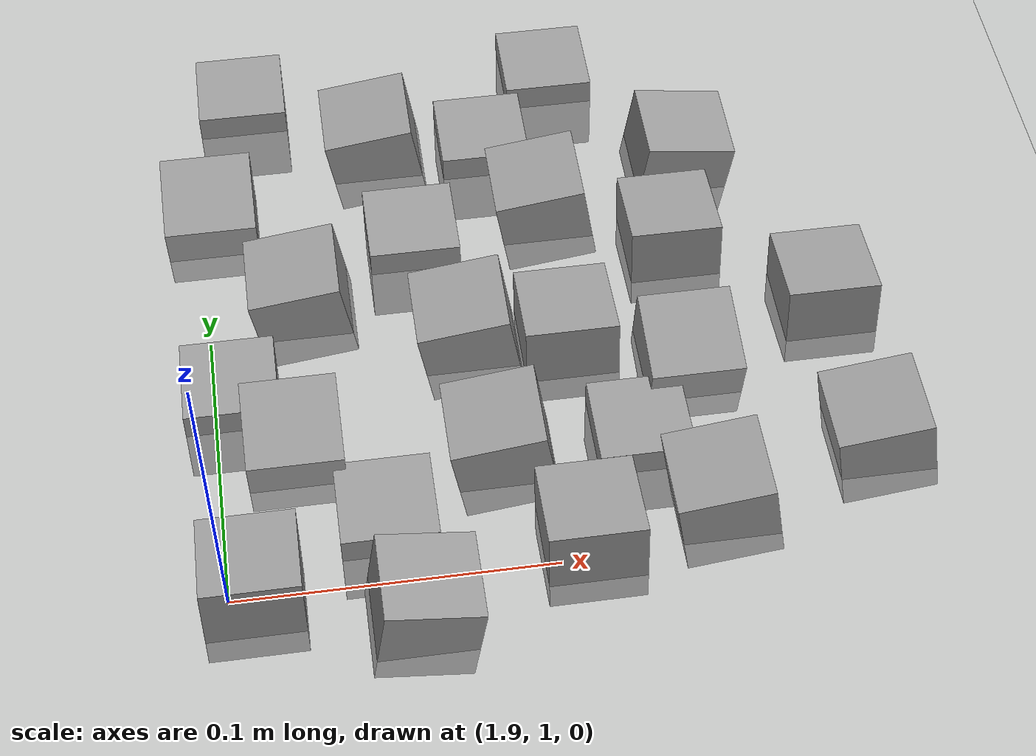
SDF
<sdf version="1.7">
 <world name="default">
  <model name="ground_plane">
   <static>1</static>
   <link name="link">
    <collision name="collision">
     <geometry><plane><normal>0 0 1</normal><size>100 100</size></plane></geometry>
     <surface><friction><ode><mu>100</mu><mu2>50</mu2></ode></friction></surface>
    </collision>
    <visual name="visual">
     <cast_shadows>0</cast_shadows>
     <geometry><plane><normal>0 0 1</normal><size>100 100</size></plane></geometry>
     <material>
      <script><uri>file://media/materials/scripts/gazebo.material</uri><name>Gazebo/Grey</name></script>
     </material>
    </visual>
   </link>
  </model>
  <model name="stone_road_5">
   <link name="link_0_clone_10">
    <inertial>
     <mass>1</mass>
     <inertia>
      <ixx>0.166667</ixx>
      <ixy>0</ixy>
      <ixz>0</ixz>
      <iyy>0.166667</iyy>
      <iyz>0</iyz>
      <izz>0.166667</izz>
     </inertia>
    </inertial>
    <pose>-0.01295 0.17123 0.003778 0.2 -0 0</pose>
    <kinematic>1</kinematic>
    <visual name="visual">
     <geometry><box><size>0.03 0.03 0.03</size></box></geometry>
     <material>
      <lighting>1</lighting>
      <script><uri>file://media/materials/scripts/gazebo.material</uri><name>Gazebo/Grey</name></script>
      <shader type="pixel"><normal_map>__default__</normal_map></shader>
      <ambient>0.3 0.3 0.3 1</ambient>
      <diffuse>0.7 0.7 0.7 1</diffuse>
      <specular>0.01 0.01 0.01 1</specular>
      <emissive>0 0 0 1</emissive>
     </material>
    </visual>
    <collision name="collision">
     <geometry><box><size>0.03 0.03 0.03</size></box></geometry>
     <surface>
      <friction>
       <ode><mu>1</mu><mu2>1</mu2><fdir1>0 0 0</fdir1><slip1>0</slip1><slip2>0</slip2></ode>
       <torsional>
        <coefficient>1</coefficient>
        <patch_radius>0</patch_radius>
        <surface_radius>0</surface_radius>
        <use_patch_radius>1</use_patch_radius>
        <ode><slip>0</slip></ode>
       </torsional>
      </friction>
      <bounce><restitution_coefficient>0</restitution_coefficient><threshold>1e+06</threshold></bounce>
      <contact>
       <collide_without_contact>0</collide_without_contact>
       <collide_without_contact_bitmask>1</collide_without_contact_bitmask>
       <collide_bitmask>1</collide_bitmask>
       <ode>
        <soft_cfm>0</soft_cfm>
        <soft_erp>0.2</soft_erp>
        <kp>1e+13</kp>
        <kd>1</kd>
        <max_vel>0.01</max_vel>
        <min_depth>0</min_depth>
       </ode>
       <bullet>
        <split_impulse>1</split_impulse>
        <split_impulse_penetration_threshold>-0.01</split_impulse_penetration_threshold>
        <soft_cfm>0</soft_cfm>
        <soft_erp>0.2</soft_erp>
        <kp>1e+13</kp>
        <kd>1</kd>
       </bullet>
      </contact>
     </surface>
    </collision>
   </link>
   <link name="link_0_clone_11">
    <inertial>
     <mass>1</mass>
     <inertia>
      <ixx>0.166667</ixx>
      <ixy>0</ixy>
      <ixz>0</ixz>
      <iyy>0.166667</iyy>
      <iyz>0</iyz>
      <izz>0.166667</izz>
     </inertia>
    </inertial>
    <pose>0.007758 0.071496 0.003778 0.2 -0 0</pose>
    <kinematic>1</kinematic>
    <visual name="visual">
     <geometry><box><size>0.03 0.03 0.03</size></box></geometry>
     <material>
      <lighting>1</lighting>
      <script><uri>file://media/materials/scripts/gazebo.material</uri><name>Gazebo/Grey</name></script>
      <shader type="pixel"><normal_map>__default__</normal_map></shader>
      <ambient>0.3 0.3 0.3 1</ambient>
      <diffuse>0.7 0.7 0.7 1</diffuse>
      <specular>0.01 0.01 0.01 1</specular>
      <emissive>0 0 0 1</emissive>
     </material>
    </visual>
    <collision name="collision">
     <geometry><box><size>0.03 0.03 0.03</size></box></geometry>
     <surface>
      <friction>
       <ode><mu>1</mu><mu2>1</mu2><fdir1>0 0 0</fdir1><slip1>0</slip1><slip2>0</slip2></ode>
       <torsional>
        <coefficient>1</coefficient>
        <patch_radius>0</patch_radius>
        <surface_radius>0</surface_radius>
        <use_patch_radius>1</use_patch_radius>
        <ode><slip>0</slip></ode>
       </torsional>
      </friction>
      <bounce><restitution_coefficient>0</restitution_coefficient><threshold>1e+06</threshold></bounce>
      <contact>
       <collide_without_contact>0</collide_without_contact>
       <collide_without_contact_bitmask>1</collide_without_contact_bitmask>
       <collide_bitmask>1</collide_bitmask>
       <ode>
        <soft_cfm>0</soft_cfm>
        <soft_erp>0.2</soft_erp>
        <kp>1e+13</kp>
        <kd>1</kd>
        <max_vel>0.01</max_vel>
        <min_depth>0</min_depth>
       </ode>
       <bullet>
        <split_impulse>1</split_impulse>
        <split_impulse_penetration_threshold>-0.01</split_impulse_penetration_threshold>
        <soft_cfm>0</soft_cfm>
        <soft_erp>0.2</soft_erp>
        <kp>1e+13</kp>
        <kd>1</kd>
       </bullet>
      </contact>
     </surface>
    </collision>
   </link>
   <link name="link_0_clone_2_clone_1">
    <inertial>
     <mass>1</mass>
     <inertia>
      <ixx>0.166667</ixx>
      <ixy>0</ixy>
      <ixz>0</ixz>
      <iyy>0.166667</iyy>
      <iyz>0</iyz>
      <izz>0.166667</izz>
     </inertia>
    </inertial>
    <pose>0.041447 0.006316 0.003778 0 0.15 0</pose>
    <kinematic>1</kinematic>
    <visual name="visual">
     <geometry><box><size>0.03 0.03 0.03</size></box></geometry>
     <material>
      <lighting>1</lighting>
      <script><uri>file://media/materials/scripts/gazebo.material</uri><name>Gazebo/Grey</name></script>
      <shader type="pixel"><normal_map>__default__</normal_map></shader>
      <ambient>0.3 0.3 0.3 1</ambient>
      <diffuse>0.7 0.7 0.7 1</diffuse>
      <specular>0.01 0.01 0.01 1</specular>
      <emissive>0 0 0 1</emissive>
     </material>
    </visual>
    <collision name="collision">
     <geometry><box><size>0.03 0.03 0.03</size></box></geometry>
     <surface>
      <friction>
       <ode><mu>1</mu><mu2>1</mu2><fdir1>0 0 0</fdir1><slip1>0</slip1><slip2>0</slip2></ode>
       <torsional>
        <coefficient>1</coefficient>
        <patch_radius>0</patch_radius>
        <surface_radius>0</surface_radius>
        <use_patch_radius>1</use_patch_radius>
        <ode><slip>0</slip></ode>
       </torsional>
      </friction>
      <bounce><restitution_coefficient>0</restitution_coefficient><threshold>1e+06</threshold></bounce>
      <contact>
       <collide_without_contact>0</collide_without_contact>
       <collide_without_contact_bitmask>1</collide_without_contact_bitmask>
       <collide_bitmask>1</collide_bitmask>
       <ode>
        <soft_cfm>0</soft_cfm>
        <soft_erp>0.2</soft_erp>
        <kp>1e+13</kp>
        <kd>1</kd>
        <max_vel>0.01</max_vel>
        <min_depth>0</min_depth>
       </ode>
       <bullet>
        <split_impulse>1</split_impulse>
        <split_impulse_penetration_threshold>-0.01</split_impulse_penetration_threshold>
        <soft_cfm>0</soft_cfm>
        <soft_erp>0.2</soft_erp>
        <kp>1e+13</kp>
        <kd>1</kd>
       </bullet>
      </contact>
     </surface>
    </collision>
   </link>
   <link name="link_0_clone_2_clone_2">
    <inertial>
     <mass>1</mass>
     <inertia>
      <ixx>0.166667</ixx>
      <ixy>0</ixy>
      <ixz>0</ixz>
      <iyy>0.166667</iyy>
      <iyz>0</iyz>
      <izz>0.166667</izz>
     </inertia>
    </inertial>
    <pose>0.066563 0.110568 0.003778 0 -0.15 0</pose>
    <kinematic>1</kinematic>
    <visual name="visual">
     <geometry><box><size>0.03 0.03 0.03</size></box></geometry>
     <material>
      <lighting>1</lighting>
      <script><uri>file://media/materials/scripts/gazebo.material</uri><name>Gazebo/Grey</name></script>
      <shader type="pixel"><normal_map>__default__</normal_map></shader>
      <ambient>0.3 0.3 0.3 1</ambient>
      <diffuse>0.7 0.7 0.7 1</diffuse>
      <specular>0.01 0.01 0.01 1</specular>
      <emissive>0 0 0 1</emissive>
     </material>
    </visual>
    <collision name="collision">
     <geometry><box><size>0.03 0.03 0.03</size></box></geometry>
     <surface>
      <friction>
       <ode><mu>1</mu><mu2>1</mu2><fdir1>0 0 0</fdir1><slip1>0</slip1><slip2>0</slip2></ode>
       <torsional>
        <coefficient>1</coefficient>
        <patch_radius>0</patch_radius>
        <surface_radius>0</surface_radius>
        <use_patch_radius>1</use_patch_radius>
        <ode><slip>0</slip></ode>
       </torsional>
      </friction>
      <bounce><restitution_coefficient>0</restitution_coefficient><threshold>1e+06</threshold></bounce>
      <contact>
       <collide_without_contact>0</collide_without_contact>
       <collide_without_contact_bitmask>1</collide_without_contact_bitmask>
       <collide_bitmask>1</collide_bitmask>
       <ode>
        <soft_cfm>0</soft_cfm>
        <soft_erp>0.2</soft_erp>
        <kp>1e+13</kp>
        <kd>1</kd>
        <max_vel>0.01</max_vel>
        <min_depth>0</min_depth>
       </ode>
       <bullet>
        <split_impulse>1</split_impulse>
        <split_impulse_penetration_threshold>-0.01</split_impulse_penetration_threshold>
        <soft_cfm>0</soft_cfm>
        <soft_erp>0.2</soft_erp>
        <kp>1e+13</kp>
        <kd>1</kd>
       </bullet>
      </contact>
     </surface>
    </collision>
   </link>
   <link name="link_0_clone_2_clone_2_clone">
    <inertial>
     <mass>1</mass>
     <inertia>
      <ixx>0.166667</ixx>
      <ixy>0</ixy>
      <ixz>0</ixz>
      <iyy>0.166667</iyy>
      <iyz>0</iyz>
      <izz>0.166667</izz>
     </inertia>
    </inertial>
    <pose>0.189059 0.051135 0.003778 0 -0.15 0</pose>
    <kinematic>1</kinematic>
    <visual name="visual">
     <geometry><box><size>0.03 0.03 0.03</size></box></geometry>
     <material>
      <lighting>1</lighting>
      <script><uri>file://media/materials/scripts/gazebo.material</uri><name>Gazebo/Grey</name></script>
      <shader type="pixel"><normal_map>__default__</normal_map></shader>
      <ambient>0.3 0.3 0.3 1</ambient>
      <diffuse>0.7 0.7 0.7 1</diffuse>
      <specular>0.01 0.01 0.01 1</specular>
      <emissive>0 0 0 1</emissive>
     </material>
    </visual>
    <collision name="collision">
     <geometry><box><size>0.03 0.03 0.03</size></box></geometry>
     <surface>
      <friction>
       <ode><mu>1</mu><mu2>1</mu2><fdir1>0 0 0</fdir1><slip1>0</slip1><slip2>0</slip2></ode>
       <torsional>
        <coefficient>1</coefficient>
        <patch_radius>0</patch_radius>
        <surface_radius>0</surface_radius>
        <use_patch_radius>1</use_patch_radius>
        <ode><slip>0</slip></ode>
       </torsional>
      </friction>
      <bounce><restitution_coefficient>0</restitution_coefficient><threshold>1e+06</threshold></bounce>
      <contact>
       <collide_without_contact>0</collide_without_contact>
       <collide_without_contact_bitmask>1</collide_without_contact_bitmask>
       <collide_bitmask>1</collide_bitmask>
       <ode>
        <soft_cfm>0</soft_cfm>
        <soft_erp>0.2</soft_erp>
        <kp>1e+13</kp>
        <kd>1</kd>
        <max_vel>0.01</max_vel>
        <min_depth>0</min_depth>
       </ode>
       <bullet>
        <split_impulse>1</split_impulse>
        <split_impulse_penetration_threshold>-0.01</split_impulse_penetration_threshold>
        <soft_cfm>0</soft_cfm>
        <soft_erp>0.2</soft_erp>
        <kp>1e+13</kp>
        <kd>1</kd>
       </bullet>
      </contact>
     </surface>
    </collision>
   </link>
   <link name="link_0_clone_2_clone_2_clone_10">
    <inertial>
     <mass>1</mass>
     <inertia>
      <ixx>0.166667</ixx>
      <ixy>0</ixy>
      <ixz>0</ixz>
      <iyy>0.166667</iyy>
      <iyz>0</iyz>
      <izz>0.166667</izz>
     </inertia>
    </inertial>
    <pose>0.09869 0.163436 0.003778 0 -0.15 0</pose>
    <kinematic>1</kinematic>
    <visual name="visual">
     <geometry><box><size>0.03 0.03 0.03</size></box></geometry>
     <material>
      <lighting>1</lighting>
      <script><uri>file://media/materials/scripts/gazebo.material</uri><name>Gazebo/Grey</name></script>
      <shader type="pixel"><normal_map>__default__</normal_map></shader>
      <ambient>0.3 0.3 0.3 1</ambient>
      <diffuse>0.7 0.7 0.7 1</diffuse>
      <specular>0.01 0.01 0.01 1</specular>
      <emissive>0 0 0 1</emissive>
     </material>
    </visual>
    <collision name="collision">
     <geometry><box><size>0.03 0.03 0.03</size></box></geometry>
     <surface>
      <friction>
       <ode><mu>1</mu><mu2>1</mu2><fdir1>0 0 0</fdir1><slip1>0</slip1><slip2>0</slip2></ode>
       <torsional>
        <coefficient>1</coefficient>
        <patch_radius>0</patch_radius>
        <surface_radius>0</surface_radius>
        <use_patch_radius>1</use_patch_radius>
        <ode><slip>0</slip></ode>
       </torsional>
      </friction>
      <bounce><restitution_coefficient>0</restitution_coefficient><threshold>1e+06</threshold></bounce>
      <contact>
       <collide_without_contact>0</collide_without_contact>
       <collide_without_contact_bitmask>1</collide_without_contact_bitmask>
       <collide_bitmask>1</collide_bitmask>
       <ode>
        <soft_cfm>0</soft_cfm>
        <soft_erp>0.2</soft_erp>
        <kp>1e+13</kp>
        <kd>1</kd>
        <max_vel>0.01</max_vel>
        <min_depth>0</min_depth>
       </ode>
       <bullet>
        <split_impulse>1</split_impulse>
        <split_impulse_penetration_threshold>-0.01</split_impulse_penetration_threshold>
        <soft_cfm>0</soft_cfm>
        <soft_erp>0.2</soft_erp>
        <kp>1e+13</kp>
        <kd>1</kd>
       </bullet>
      </contact>
     </surface>
    </collision>
   </link>
   <link name="link_0_clone_2_clone_2_clone_12">
    <inertial>
     <mass>1</mass>
     <inertia>
      <ixx>0.166667</ixx>
      <ixy>0</ixy>
      <ixz>0</ixz>
      <iyy>0.166667</iyy>
      <iyz>0</iyz>
      <izz>0.166667</izz>
     </inertia>
    </inertial>
    <pose>0.044693 0.200081 0.003778 0 -0.15 0</pose>
    <kinematic>1</kinematic>
    <visual name="visual">
     <geometry><box><size>0.03 0.03 0.03</size></box></geometry>
     <material>
      <lighting>1</lighting>
      <script><uri>file://media/materials/scripts/gazebo.material</uri><name>Gazebo/Grey</name></script>
      <shader type="pixel"><normal_map>__default__</normal_map></shader>
      <ambient>0.3 0.3 0.3 1</ambient>
      <diffuse>0.7 0.7 0.7 1</diffuse>
      <specular>0.01 0.01 0.01 1</specular>
      <emissive>0 0 0 1</emissive>
     </material>
    </visual>
    <collision name="collision">
     <geometry><box><size>0.03 0.03 0.03</size></box></geometry>
     <surface>
      <friction>
       <ode><mu>1</mu><mu2>1</mu2><fdir1>0 0 0</fdir1><slip1>0</slip1><slip2>0</slip2></ode>
       <torsional>
        <coefficient>1</coefficient>
        <patch_radius>0</patch_radius>
        <surface_radius>0</surface_radius>
        <use_patch_radius>1</use_patch_radius>
        <ode><slip>0</slip></ode>
       </torsional>
      </friction>
      <bounce><restitution_coefficient>0</restitution_coefficient><threshold>1e+06</threshold></bounce>
      <contact>
       <collide_without_contact>0</collide_without_contact>
       <collide_without_contact_bitmask>1</collide_without_contact_bitmask>
       <collide_bitmask>1</collide_bitmask>
       <ode>
        <soft_cfm>0</soft_cfm>
        <soft_erp>0.2</soft_erp>
        <kp>1e+13</kp>
        <kd>1</kd>
        <max_vel>0.01</max_vel>
        <min_depth>0</min_depth>
       </ode>
       <bullet>
        <split_impulse>1</split_impulse>
        <split_impulse_penetration_threshold>-0.01</split_impulse_penetration_threshold>
        <soft_cfm>0</soft_cfm>
        <soft_erp>0.2</soft_erp>
        <kp>1e+13</kp>
        <kd>1</kd>
       </bullet>
      </contact>
     </surface>
    </collision>
   </link>
   <link name="link_0_clone_2_clone_2_clone_13">
    <inertial>
     <mass>1</mass>
     <inertia>
      <ixx>0.166667</ixx>
      <ixy>0</ixy>
      <ixz>0</ixz>
      <iyy>0.166667</iyy>
      <iyz>0</iyz>
      <izz>0.166667</izz>
     </inertia>
    </inertial>
    <pose>0.014407 0.13189 0.003778 0 -0.15 0</pose>
    <kinematic>1</kinematic>
    <visual name="visual">
     <geometry><box><size>0.03 0.03 0.03</size></box></geometry>
     <material>
      <lighting>1</lighting>
      <script><uri>file://media/materials/scripts/gazebo.material</uri><name>Gazebo/Grey</name></script>
      <shader type="pixel"><normal_map>__default__</normal_map></shader>
      <ambient>0.3 0.3 0.3 1</ambient>
      <diffuse>0.7 0.7 0.7 1</diffuse>
      <specular>0.01 0.01 0.01 1</specular>
      <emissive>0 0 0 1</emissive>
     </material>
    </visual>
    <collision name="collision">
     <geometry><box><size>0.03 0.03 0.03</size></box></geometry>
     <surface>
      <friction>
       <ode><mu>1</mu><mu2>1</mu2><fdir1>0 0 0</fdir1><slip1>0</slip1><slip2>0</slip2></ode>
       <torsional>
        <coefficient>1</coefficient>
        <patch_radius>0</patch_radius>
        <surface_radius>0</surface_radius>
        <use_patch_radius>1</use_patch_radius>
        <ode><slip>0</slip></ode>
       </torsional>
      </friction>
      <bounce><restitution_coefficient>0</restitution_coefficient><threshold>1e+06</threshold></bounce>
      <contact>
       <collide_without_contact>0</collide_without_contact>
       <collide_without_contact_bitmask>1</collide_without_contact_bitmask>
       <collide_bitmask>1</collide_bitmask>
       <ode>
        <soft_cfm>0</soft_cfm>
        <soft_erp>0.2</soft_erp>
        <kp>1e+13</kp>
        <kd>1</kd>
        <max_vel>0.01</max_vel>
        <min_depth>0</min_depth>
       </ode>
       <bullet>
        <split_impulse>1</split_impulse>
        <split_impulse_penetration_threshold>-0.01</split_impulse_penetration_threshold>
        <soft_cfm>0</soft_cfm>
        <soft_erp>0.2</soft_erp>
        <kp>1e+13</kp>
        <kd>1</kd>
       </bullet>
      </contact>
     </surface>
    </collision>
   </link>
   <link name="link_0_clone_2_clone_2_clone_13_clone">
    <inertial>
     <mass>1</mass>
     <inertia>
      <ixx>0.166667</ixx>
      <ixy>0</ixy>
      <ixz>0</ixz>
      <iyy>0.166667</iyy>
      <iyz>0</iyz>
      <izz>0.166667</izz>
     </inertia>
    </inertial>
    <pose>0.138846 0.140956 0.003778 -0.1 0 0</pose>
    <kinematic>1</kinematic>
    <visual name="visual">
     <geometry><box><size>0.03 0.03 0.03</size></box></geometry>
     <material>
      <lighting>1</lighting>
      <script><uri>file://media/materials/scripts/gazebo.material</uri><name>Gazebo/Grey</name></script>
      <shader type="pixel"><normal_map>__default__</normal_map></shader>
      <ambient>0.3 0.3 0.3 1</ambient>
      <diffuse>0.7 0.7 0.7 1</diffuse>
      <specular>0.01 0.01 0.01 1</specular>
      <emissive>0 0 0 1</emissive>
     </material>
    </visual>
    <collision name="collision">
     <geometry><box><size>0.03 0.03 0.03</size></box></geometry>
     <surface>
      <friction>
       <ode><mu>1</mu><mu2>1</mu2><fdir1>0 0 0</fdir1><slip1>0</slip1><slip2>0</slip2></ode>
       <torsional>
        <coefficient>1</coefficient>
        <patch_radius>0</patch_radius>
        <surface_radius>0</surface_radius>
        <use_patch_radius>1</use_patch_radius>
        <ode><slip>0</slip></ode>
       </torsional>
      </friction>
      <bounce><restitution_coefficient>0</restitution_coefficient><threshold>1e+06</threshold></bounce>
      <contact>
       <collide_without_contact>0</collide_without_contact>
       <collide_without_contact_bitmask>1</collide_without_contact_bitmask>
       <collide_bitmask>1</collide_bitmask>
       <ode>
        <soft_cfm>0</soft_cfm>
        <soft_erp>0.2</soft_erp>
        <kp>1e+13</kp>
        <kd>1</kd>
        <max_vel>0.01</max_vel>
        <min_depth>0</min_depth>
       </ode>
       <bullet>
        <split_impulse>1</split_impulse>
        <split_impulse_penetration_threshold>-0.01</split_impulse_penetration_threshold>
        <soft_cfm>0</soft_cfm>
        <soft_erp>0.2</soft_erp>
        <kp>1e+13</kp>
        <kd>1</kd>
       </bullet>
      </contact>
     </surface>
    </collision>
   </link>
   <link name="link_0_clone_2_clone_2_clone_13_clone_clone">
    <inertial>
     <mass>1</mass>
     <inertia>
      <ixx>0.166667</ixx>
      <ixy>0</ixy>
      <ixz>0</ixz>
      <iyy>0.166667</iyy>
      <iyz>0</iyz>
      <izz>0.166667</izz>
     </inertia>
    </inertial>
    <pose>0.184456 0.108712 0.003778 -0.1 0 0</pose>
    <kinematic>1</kinematic>
    <visual name="visual">
     <geometry><box><size>0.03 0.03 0.03</size></box></geometry>
     <material>
      <lighting>1</lighting>
      <script><uri>file://media/materials/scripts/gazebo.material</uri><name>Gazebo/Grey</name></script>
      <shader type="pixel"><normal_map>__default__</normal_map></shader>
      <ambient>0.3 0.3 0.3 1</ambient>
      <diffuse>0.7 0.7 0.7 1</diffuse>
      <specular>0.01 0.01 0.01 1</specular>
      <emissive>0 0 0 1</emissive>
     </material>
    </visual>
    <collision name="collision">
     <geometry><box><size>0.03 0.03 0.03</size></box></geometry>
     <surface>
      <friction>
       <ode><mu>1</mu><mu2>1</mu2><fdir1>0 0 0</fdir1><slip1>0</slip1><slip2>0</slip2></ode>
       <torsional>
        <coefficient>1</coefficient>
        <patch_radius>0</patch_radius>
        <surface_radius>0</surface_radius>
        <use_patch_radius>1</use_patch_radius>
        <ode><slip>0</slip></ode>
       </torsional>
      </friction>
      <bounce><restitution_coefficient>0</restitution_coefficient><threshold>1e+06</threshold></bounce>
      <contact>
       <collide_without_contact>0</collide_without_contact>
       <collide_without_contact_bitmask>1</collide_without_contact_bitmask>
       <collide_bitmask>1</collide_bitmask>
       <ode>
        <soft_cfm>0</soft_cfm>
        <soft_erp>0.2</soft_erp>
        <kp>1e+13</kp>
        <kd>1</kd>
        <max_vel>0.01</max_vel>
        <min_depth>0</min_depth>
       </ode>
       <bullet>
        <split_impulse>1</split_impulse>
        <split_impulse_penetration_threshold>-0.01</split_impulse_penetration_threshold>
        <soft_cfm>0</soft_cfm>
        <soft_erp>0.2</soft_erp>
        <kp>1e+13</kp>
        <kd>1</kd>
       </bullet>
      </contact>
     </surface>
    </collision>
   </link>
   <link name="link_0_clone_2_clone_2_clone_13_clone_clone_0">
    <inertial>
     <mass>1</mass>
     <inertia>
      <ixx>0.166667</ixx>
      <ixy>0</ixy>
      <ixz>0</ixz>
      <iyy>0.166667</iyy>
      <iyz>0</iyz>
      <izz>0.166667</izz>
     </inertia>
    </inertial>
    <pose>0.094072 0.02539 0.003778 -0.1 0 0</pose>
    <kinematic>1</kinematic>
    <visual name="visual">
     <geometry><box><size>0.03 0.03 0.03</size></box></geometry>
     <material>
      <lighting>1</lighting>
      <script><uri>file://media/materials/scripts/gazebo.material</uri><name>Gazebo/Grey</name></script>
      <shader type="pixel"><normal_map>__default__</normal_map></shader>
      <ambient>0.3 0.3 0.3 1</ambient>
      <diffuse>0.7 0.7 0.7 1</diffuse>
      <specular>0.01 0.01 0.01 1</specular>
      <emissive>0 0 0 1</emissive>
     </material>
    </visual>
    <collision name="collision">
     <geometry><box><size>0.03 0.03 0.03</size></box></geometry>
     <surface>
      <friction>
       <ode><mu>1</mu><mu2>1</mu2><fdir1>0 0 0</fdir1><slip1>0</slip1><slip2>0</slip2></ode>
       <torsional>
        <coefficient>1</coefficient>
        <patch_radius>0</patch_radius>
        <surface_radius>0</surface_radius>
        <use_patch_radius>1</use_patch_radius>
        <ode><slip>0</slip></ode>
       </torsional>
      </friction>
      <bounce><restitution_coefficient>0</restitution_coefficient><threshold>1e+06</threshold></bounce>
      <contact>
       <collide_without_contact>0</collide_without_contact>
       <collide_without_contact_bitmask>1</collide_without_contact_bitmask>
       <collide_bitmask>1</collide_bitmask>
       <ode>
        <soft_cfm>0</soft_cfm>
        <soft_erp>0.2</soft_erp>
        <kp>1e+13</kp>
        <kd>1</kd>
        <max_vel>0.01</max_vel>
        <min_depth>0</min_depth>
       </ode>
       <bullet>
        <split_impulse>1</split_impulse>
        <split_impulse_penetration_threshold>-0.01</split_impulse_penetration_threshold>
        <soft_cfm>0</soft_cfm>
        <soft_erp>0.2</soft_erp>
        <kp>1e+13</kp>
        <kd>1</kd>
       </bullet>
      </contact>
     </surface>
    </collision>
   </link>
   <link name="link_0_clone_2_clone_2_clone_13_clone_clone_1">
    <inertial>
     <mass>1</mass>
     <inertia>
      <ixx>0.166667</ixx>
      <ixy>0</ixy>
      <ixz>0</ixz>
      <iyy>0.166667</iyy>
      <iyz>0</iyz>
      <izz>0.166667</izz>
     </inertia>
    </inertial>
    <pose>0.098415 0.103772 0.003778 -0.1 0 0</pose>
    <kinematic>1</kinematic>
    <visual name="visual">
     <geometry><box><size>0.03 0.03 0.03</size></box></geometry>
     <material>
      <lighting>1</lighting>
      <script><uri>file://media/materials/scripts/gazebo.material</uri><name>Gazebo/Grey</name></script>
      <shader type="pixel"><normal_map>__default__</normal_map></shader>
      <ambient>0.3 0.3 0.3 1</ambient>
      <diffuse>0.7 0.7 0.7 1</diffuse>
      <specular>0.01 0.01 0.01 1</specular>
      <emissive>0 0 0 1</emissive>
     </material>
    </visual>
    <collision name="collision">
     <geometry><box><size>0.03 0.03 0.03</size></box></geometry>
     <surface>
      <friction>
       <ode><mu>1</mu><mu2>1</mu2><fdir1>0 0 0</fdir1><slip1>0</slip1><slip2>0</slip2></ode>
       <torsional>
        <coefficient>1</coefficient>
        <patch_radius>0</patch_radius>
        <surface_radius>0</surface_radius>
        <use_patch_radius>1</use_patch_radius>
        <ode><slip>0</slip></ode>
       </torsional>
      </friction>
      <bounce><restitution_coefficient>0</restitution_coefficient><threshold>1e+06</threshold></bounce>
      <contact>
       <collide_without_contact>0</collide_without_contact>
       <collide_without_contact_bitmask>1</collide_without_contact_bitmask>
       <collide_bitmask>1</collide_bitmask>
       <ode>
        <soft_cfm>0</soft_cfm>
        <soft_erp>0.2</soft_erp>
        <kp>1e+13</kp>
        <kd>1</kd>
        <max_vel>0.01</max_vel>
        <min_depth>0</min_depth>
       </ode>
       <bullet>
        <split_impulse>1</split_impulse>
        <split_impulse_penetration_threshold>-0.01</split_impulse_penetration_threshold>
        <soft_cfm>0</soft_cfm>
        <soft_erp>0.2</soft_erp>
        <kp>1e+13</kp>
        <kd>1</kd>
       </bullet>
      </contact>
     </surface>
    </collision>
   </link>
   <link name="link_0_clone_2_clone_2_clone_13_clone_clone_16">
    <inertial>
     <mass>1</mass>
     <inertia>
      <ixx>0.166667</ixx>
      <ixy>0</ixy>
      <ixz>0</ixz>
      <iyy>0.166667</iyy>
      <iyz>0</iyz>
      <izz>0.166667</izz>
     </inertia>
    </inertial>
    <pose>0.108948 0.22849 -0.006222 0 -0 0</pose>
    <kinematic>1</kinematic>
    <visual name="visual">
     <geometry><box><size>0.03 0.03 0.03</size></box></geometry>
     <material>
      <lighting>1</lighting>
      <script><uri>file://media/materials/scripts/gazebo.material</uri><name>Gazebo/Grey</name></script>
      <shader type="pixel"><normal_map>__default__</normal_map></shader>
      <ambient>0.3 0.3 0.3 1</ambient>
      <diffuse>0.7 0.7 0.7 1</diffuse>
      <specular>0.01 0.01 0.01 1</specular>
      <emissive>0 0 0 1</emissive>
     </material>
    </visual>
    <collision name="collision">
     <geometry><box><size>0.03 0.03 0.03</size></box></geometry>
     <surface>
      <friction>
       <ode><mu>1</mu><mu2>1</mu2><fdir1>0 0 0</fdir1><slip1>0</slip1><slip2>0</slip2></ode>
       <torsional>
        <coefficient>1</coefficient>
        <patch_radius>0</patch_radius>
        <surface_radius>0</surface_radius>
        <use_patch_radius>1</use_patch_radius>
        <ode><slip>0</slip></ode>
       </torsional>
      </friction>
      <bounce><restitution_coefficient>0</restitution_coefficient><threshold>1e+06</threshold></bounce>
      <contact>
       <collide_without_contact>0</collide_without_contact>
       <collide_without_contact_bitmask>1</collide_without_contact_bitmask>
       <collide_bitmask>1</collide_bitmask>
       <ode>
        <soft_cfm>0</soft_cfm>
        <soft_erp>0.2</soft_erp>
        <kp>1e+13</kp>
        <kd>1</kd>
        <max_vel>0.01</max_vel>
        <min_depth>0</min_depth>
       </ode>
       <bullet>
        <split_impulse>1</split_impulse>
        <split_impulse_penetration_threshold>-0.01</split_impulse_penetration_threshold>
        <soft_cfm>0</soft_cfm>
        <soft_erp>0.2</soft_erp>
        <kp>1e+13</kp>
        <kd>1</kd>
       </bullet>
      </contact>
     </surface>
    </collision>
   </link>
   <link name="link_0_clone_2_clone_2_clone_13_clone_clone_16_clone">
    <inertial>
     <mass>1</mass>
     <inertia>
      <ixx>0.166667</ixx>
      <ixy>0</ixy>
      <ixz>0</ixz>
      <iyy>0.166667</iyy>
      <iyz>0</iyz>
      <izz>0.166667</izz>
     </inertia>
    </inertial>
    <pose>0.0535 0.156403 -0.006222 0 -0 0</pose>
    <kinematic>1</kinematic>
    <visual name="visual">
     <geometry><box><size>0.03 0.03 0.03</size></box></geometry>
     <material>
      <lighting>1</lighting>
      <script><uri>file://media/materials/scripts/gazebo.material</uri><name>Gazebo/Grey</name></script>
      <shader type="pixel"><normal_map>__default__</normal_map></shader>
      <ambient>0.3 0.3 0.3 1</ambient>
      <diffuse>0.7 0.7 0.7 1</diffuse>
      <specular>0.01 0.01 0.01 1</specular>
      <emissive>0 0 0 1</emissive>
     </material>
    </visual>
    <collision name="collision">
     <geometry><box><size>0.03 0.03 0.03</size></box></geometry>
     <surface>
      <friction>
       <ode><mu>1</mu><mu2>1</mu2><fdir1>0 0 0</fdir1><slip1>0</slip1><slip2>0</slip2></ode>
       <torsional>
        <coefficient>1</coefficient>
        <patch_radius>0</patch_radius>
        <surface_radius>0</surface_radius>
        <use_patch_radius>1</use_patch_radius>
        <ode><slip>0</slip></ode>
       </torsional>
      </friction>
      <bounce><restitution_coefficient>0</restitution_coefficient><threshold>1e+06</threshold></bounce>
      <contact>
       <collide_without_contact>0</collide_without_contact>
       <collide_without_contact_bitmask>1</collide_without_contact_bitmask>
       <collide_bitmask>1</collide_bitmask>
       <ode>
        <soft_cfm>0</soft_cfm>
        <soft_erp>0.2</soft_erp>
        <kp>1e+13</kp>
        <kd>1</kd>
        <max_vel>0.01</max_vel>
        <min_depth>0</min_depth>
       </ode>
       <bullet>
        <split_impulse>1</split_impulse>
        <split_impulse_penetration_threshold>-0.01</split_impulse_penetration_threshold>
        <soft_cfm>0</soft_cfm>
        <soft_erp>0.2</soft_erp>
        <kp>1e+13</kp>
        <kd>1</kd>
       </bullet>
      </contact>
     </surface>
    </collision>
   </link>
   <link name="link_0_clone_2_clone_2_clone_13_clone_clone_16_clone_0">
    <inertial>
     <mass>1</mass>
     <inertia>
      <ixx>0.166667</ixx>
      <ixy>0</ixy>
      <ixz>0</ixz>
      <iyy>0.166667</iyy>
      <iyz>0</iyz>
      <izz>0.166667</izz>
     </inertia>
    </inertial>
    <pose>-0.010782 0.09679 -0.006222 0 -0 0</pose>
    <kinematic>1</kinematic>
    <visual name="visual">
     <geometry><box><size>0.03 0.03 0.03</size></box></geometry>
     <material>
      <lighting>1</lighting>
      <script><uri>file://media/materials/scripts/gazebo.material</uri><name>Gazebo/Grey</name></script>
      <shader type="pixel"><normal_map>__default__</normal_map></shader>
      <ambient>0.3 0.3 0.3 1</ambient>
      <diffuse>0.7 0.7 0.7 1</diffuse>
      <specular>0.01 0.01 0.01 1</specular>
      <emissive>0 0 0 1</emissive>
     </material>
    </visual>
    <collision name="collision">
     <geometry><box><size>0.03 0.03 0.03</size></box></geometry>
     <surface>
      <friction>
       <ode><mu>1</mu><mu2>1</mu2><fdir1>0 0 0</fdir1><slip1>0</slip1><slip2>0</slip2></ode>
       <torsional>
        <coefficient>1</coefficient>
        <patch_radius>0</patch_radius>
        <surface_radius>0</surface_radius>
        <use_patch_radius>1</use_patch_radius>
        <ode><slip>0</slip></ode>
       </torsional>
      </friction>
      <bounce><restitution_coefficient>0</restitution_coefficient><threshold>1e+06</threshold></bounce>
      <contact>
       <collide_without_contact>0</collide_without_contact>
       <collide_without_contact_bitmask>1</collide_without_contact_bitmask>
       <collide_bitmask>1</collide_bitmask>
       <ode>
        <soft_cfm>0</soft_cfm>
        <soft_erp>0.2</soft_erp>
        <kp>1e+13</kp>
        <kd>1</kd>
        <max_vel>0.01</max_vel>
        <min_depth>0</min_depth>
       </ode>
       <bullet>
        <split_impulse>1</split_impulse>
        <split_impulse_penetration_threshold>-0.01</split_impulse_penetration_threshold>
        <soft_cfm>0</soft_cfm>
        <soft_erp>0.2</soft_erp>
        <kp>1e+13</kp>
        <kd>1</kd>
       </bullet>
      </contact>
     </surface>
    </collision>
   </link>
   <link name="link_0_clone_2_clone_2_clone_13_clone_clone_16_clone_1">
    <inertial>
     <mass>1</mass>
     <inertia>
      <ixx>0.166667</ixx>
      <ixy>0</ixy>
      <ixz>0</ixz>
      <iyy>0.166667</iyy>
      <iyz>0</iyz>
      <izz>0.166667</izz>
     </inertia>
    </inertial>
    <pose>0.033787 0.042837 -0.006222 0 -0 0</pose>
    <kinematic>1</kinematic>
    <visual name="visual">
     <geometry><box><size>0.03 0.03 0.03</size></box></geometry>
     <material>
      <lighting>1</lighting>
      <script><uri>file://media/materials/scripts/gazebo.material</uri><name>Gazebo/Grey</name></script>
      <shader type="pixel"><normal_map>__default__</normal_map></shader>
      <ambient>0.3 0.3 0.3 1</ambient>
      <diffuse>0.7 0.7 0.7 1</diffuse>
      <specular>0.01 0.01 0.01 1</specular>
      <emissive>0 0 0 1</emissive>
     </material>
    </visual>
    <collision name="collision">
     <geometry><box><size>0.03 0.03 0.03</size></box></geometry>
     <surface>
      <friction>
       <ode><mu>1</mu><mu2>1</mu2><fdir1>0 0 0</fdir1><slip1>0</slip1><slip2>0</slip2></ode>
       <torsional>
        <coefficient>1</coefficient>
        <patch_radius>0</patch_radius>
        <surface_radius>0</surface_radius>
        <use_patch_radius>1</use_patch_radius>
        <ode><slip>0</slip></ode>
       </torsional>
      </friction>
      <bounce><restitution_coefficient>0</restitution_coefficient><threshold>1e+06</threshold></bounce>
      <contact>
       <collide_without_contact>0</collide_without_contact>
       <collide_without_contact_bitmask>1</collide_without_contact_bitmask>
       <collide_bitmask>1</collide_bitmask>
       <ode>
        <soft_cfm>0</soft_cfm>
        <soft_erp>0.2</soft_erp>
        <kp>1e+13</kp>
        <kd>1</kd>
        <max_vel>0.01</max_vel>
        <min_depth>0</min_depth>
       </ode>
       <bullet>
        <split_impulse>1</split_impulse>
        <split_impulse_penetration_threshold>-0.01</split_impulse_penetration_threshold>
        <soft_cfm>0</soft_cfm>
        <soft_erp>0.2</soft_erp>
        <kp>1e+13</kp>
        <kd>1</kd>
       </bullet>
      </contact>
     </surface>
    </collision>
   </link>
   <link name="link_0_clone_2_clone_2_clone_13_clone_clone_16_clone_20">
    <inertial>
     <mass>1</mass>
     <inertia>
      <ixx>0.166667</ixx>
      <ixy>0</ixy>
      <ixz>0</ixz>
      <iyy>0.166667</iyy>
      <iyz>0</iyz>
      <izz>0.166667</izz>
     </inertia>
    </inertial>
    <pose>0.115763 0.063063 -0.006222 0 -0 0</pose>
    <kinematic>1</kinematic>
    <visual name="visual">
     <geometry><box><size>0.03 0.03 0.03</size></box></geometry>
     <material>
      <lighting>1</lighting>
      <script><uri>file://media/materials/scripts/gazebo.material</uri><name>Gazebo/Grey</name></script>
      <shader type="pixel"><normal_map>__default__</normal_map></shader>
      <ambient>0.3 0.3 0.3 1</ambient>
      <diffuse>0.7 0.7 0.7 1</diffuse>
      <specular>0.01 0.01 0.01 1</specular>
      <emissive>0 0 0 1</emissive>
     </material>
    </visual>
    <collision name="collision">
     <geometry><box><size>0.03 0.03 0.03</size></box></geometry>
     <surface>
      <friction>
       <ode><mu>1</mu><mu2>1</mu2><fdir1>0 0 0</fdir1><slip1>0</slip1><slip2>0</slip2></ode>
       <torsional>
        <coefficient>1</coefficient>
        <patch_radius>0</patch_radius>
        <surface_radius>0</surface_radius>
        <use_patch_radius>1</use_patch_radius>
        <ode><slip>0</slip></ode>
       </torsional>
      </friction>
      <bounce><restitution_coefficient>0</restitution_coefficient><threshold>1e+06</threshold></bounce>
      <contact>
       <collide_without_contact>0</collide_without_contact>
       <collide_without_contact_bitmask>1</collide_without_contact_bitmask>
       <collide_bitmask>1</collide_bitmask>
       <ode>
        <soft_cfm>0</soft_cfm>
        <soft_erp>0.2</soft_erp>
        <kp>1e+13</kp>
        <kd>1</kd>
        <max_vel>0.01</max_vel>
        <min_depth>0</min_depth>
       </ode>
       <bullet>
        <split_impulse>1</split_impulse>
        <split_impulse_penetration_threshold>-0.01</split_impulse_penetration_threshold>
        <soft_cfm>0</soft_cfm>
        <soft_erp>0.2</soft_erp>
        <kp>1e+13</kp>
        <kd>1</kd>
       </bullet>
      </contact>
     </surface>
    </collision>
   </link>
   <link name="link_0_clone_2_clone_2_clone_13_clone_clone_16_clone_23">
    <inertial>
     <mass>1</mass>
     <inertia>
      <ixx>0.166667</ixx>
      <ixy>0</ixy>
      <ixz>0</ixz>
      <iyy>0.166667</iyy>
      <iyz>0</iyz>
      <izz>0.166667</izz>
     </inertia>
    </inertial>
    <pose>0.000385 0.228664 -0.006222 0 -0 0</pose>
    <kinematic>1</kinematic>
    <visual name="visual">
     <geometry><box><size>0.03 0.03 0.03</size></box></geometry>
     <material>
      <lighting>1</lighting>
      <script><uri>file://media/materials/scripts/gazebo.material</uri><name>Gazebo/Grey</name></script>
      <shader type="pixel"><normal_map>__default__</normal_map></shader>
      <ambient>0.3 0.3 0.3 1</ambient>
      <diffuse>0.7 0.7 0.7 1</diffuse>
      <specular>0.01 0.01 0.01 1</specular>
      <emissive>0 0 0 1</emissive>
     </material>
    </visual>
    <collision name="collision">
     <geometry><box><size>0.03 0.03 0.03</size></box></geometry>
     <surface>
      <friction>
       <ode><mu>1</mu><mu2>1</mu2><fdir1>0 0 0</fdir1><slip1>0</slip1><slip2>0</slip2></ode>
       <torsional>
        <coefficient>1</coefficient>
        <patch_radius>0</patch_radius>
        <surface_radius>0</surface_radius>
        <use_patch_radius>1</use_patch_radius>
        <ode><slip>0</slip></ode>
       </torsional>
      </friction>
      <bounce><restitution_coefficient>0</restitution_coefficient><threshold>1e+06</threshold></bounce>
      <contact>
       <collide_without_contact>0</collide_without_contact>
       <collide_without_contact_bitmask>1</collide_without_contact_bitmask>
       <collide_bitmask>1</collide_bitmask>
       <ode>
        <soft_cfm>0</soft_cfm>
        <soft_erp>0.2</soft_erp>
        <kp>1e+13</kp>
        <kd>1</kd>
        <max_vel>0.01</max_vel>
        <min_depth>0</min_depth>
       </ode>
       <bullet>
        <split_impulse>1</split_impulse>
        <split_impulse_penetration_threshold>-0.01</split_impulse_penetration_threshold>
        <soft_cfm>0</soft_cfm>
        <soft_erp>0.2</soft_erp>
        <kp>1e+13</kp>
        <kd>1</kd>
       </bullet>
      </contact>
     </surface>
    </collision>
   </link>
   <link name="link_0_clone_2_clone_2_clone_13_clone_clone_16_clone_24">
    <inertial>
     <mass>1</mass>
     <inertia>
      <ixx>0.166667</ixx>
      <ixy>0</ixy>
      <ixz>0</ixz>
      <iyy>0.166667</iyy>
      <iyz>0</iyz>
      <izz>0.166667</izz>
     </inertia>
    </inertial>
    <pose>0.08246 0.196776 -0.006222 0 -0 0</pose>
    <kinematic>1</kinematic>
    <visual name="visual">
     <geometry><box><size>0.03 0.03 0.03</size></box></geometry>
     <material>
      <lighting>1</lighting>
      <script><uri>file://media/materials/scripts/gazebo.material</uri><name>Gazebo/Grey</name></script>
      <shader type="pixel"><normal_map>__default__</normal_map></shader>
      <ambient>0.3 0.3 0.3 1</ambient>
      <diffuse>0.7 0.7 0.7 1</diffuse>
      <specular>0.01 0.01 0.01 1</specular>
      <emissive>0 0 0 1</emissive>
     </material>
    </visual>
    <collision name="collision">
     <geometry><box><size>0.03 0.03 0.03</size></box></geometry>
     <surface>
      <friction>
       <ode><mu>1</mu><mu2>1</mu2><fdir1>0 0 0</fdir1><slip1>0</slip1><slip2>0</slip2></ode>
       <torsional>
        <coefficient>1</coefficient>
        <patch_radius>0</patch_radius>
        <surface_radius>0</surface_radius>
        <use_patch_radius>1</use_patch_radius>
        <ode><slip>0</slip></ode>
       </torsional>
      </friction>
      <bounce><restitution_coefficient>0</restitution_coefficient><threshold>1e+06</threshold></bounce>
      <contact>
       <collide_without_contact>0</collide_without_contact>
       <collide_without_contact_bitmask>1</collide_without_contact_bitmask>
       <collide_bitmask>1</collide_bitmask>
       <ode>
        <soft_cfm>0</soft_cfm>
        <soft_erp>0.2</soft_erp>
        <kp>1e+13</kp>
        <kd>1</kd>
        <max_vel>0.01</max_vel>
        <min_depth>0</min_depth>
       </ode>
       <bullet>
        <split_impulse>1</split_impulse>
        <split_impulse_penetration_threshold>-0.01</split_impulse_penetration_threshold>
        <soft_cfm>0</soft_cfm>
        <soft_erp>0.2</soft_erp>
        <kp>1e+13</kp>
        <kd>1</kd>
       </bullet>
      </contact>
     </surface>
    </collision>
   </link>
   <link name="link_0_clone_2_clone_2_clone_13_clone_clone_3">
    <inertial>
     <mass>1</mass>
     <inertia>
      <ixx>0.166667</ixx>
      <ixy>0</ixy>
      <ixz>0</ixz>
      <iyy>0.166667</iyy>
      <iyz>0</iyz>
      <izz>0.166667</izz>
     </inertia>
    </inertial>
    <pose>-0.008408 0.020239 0.003778 -0.1 0 0</pose>
    <kinematic>1</kinematic>
    <visual name="visual">
     <geometry><box><size>0.03 0.03 0.03</size></box></geometry>
     <material>
      <lighting>1</lighting>
      <script><uri>file://media/materials/scripts/gazebo.material</uri><name>Gazebo/Grey</name></script>
      <shader type="pixel"><normal_map>__default__</normal_map></shader>
      <ambient>0.3 0.3 0.3 1</ambient>
      <diffuse>0.7 0.7 0.7 1</diffuse>
      <specular>0.01 0.01 0.01 1</specular>
      <emissive>0 0 0 1</emissive>
     </material>
    </visual>
    <collision name="collision">
     <geometry><box><size>0.03 0.03 0.03</size></box></geometry>
     <surface>
      <friction>
       <ode><mu>1</mu><mu2>1</mu2><fdir1>0 0 0</fdir1><slip1>0</slip1><slip2>0</slip2></ode>
       <torsional>
        <coefficient>1</coefficient>
        <patch_radius>0</patch_radius>
        <surface_radius>0</surface_radius>
        <use_patch_radius>1</use_patch_radius>
        <ode><slip>0</slip></ode>
       </torsional>
      </friction>
      <bounce><restitution_coefficient>0</restitution_coefficient><threshold>1e+06</threshold></bounce>
      <contact>
       <collide_without_contact>0</collide_without_contact>
       <collide_without_contact_bitmask>1</collide_without_contact_bitmask>
       <collide_bitmask>1</collide_bitmask>
       <ode>
        <soft_cfm>0</soft_cfm>
        <soft_erp>0.2</soft_erp>
        <kp>1e+13</kp>
        <kd>1</kd>
        <max_vel>0.01</max_vel>
        <min_depth>0</min_depth>
       </ode>
       <bullet>
        <split_impulse>1</split_impulse>
        <split_impulse_penetration_threshold>-0.01</split_impulse_penetration_threshold>
        <soft_cfm>0</soft_cfm>
        <soft_erp>0.2</soft_erp>
        <kp>1e+13</kp>
        <kd>1</kd>
       </bullet>
      </contact>
     </surface>
    </collision>
   </link>
   <link name="link_0_clone_2_clone_2_clone_6">
    <inertial>
     <mass>1</mass>
     <inertia>
      <ixx>0.166667</ixx>
      <ixy>0</ixy>
      <ixz>0</ixz>
      <iyy>0.166667</iyy>
      <iyz>0</iyz>
      <izz>0.166667</izz>
     </inertia>
    </inertial>
    <pose>0.136141 0.034017 0.003778 0 -0.15 0</pose>
    <kinematic>1</kinematic>
    <visual name="visual">
     <geometry><box><size>0.03 0.03 0.03</size></box></geometry>
     <material>
      <lighting>1</lighting>
      <script><uri>file://media/materials/scripts/gazebo.material</uri><name>Gazebo/Grey</name></script>
      <shader type="pixel"><normal_map>__default__</normal_map></shader>
      <ambient>0.3 0.3 0.3 1</ambient>
      <diffuse>0.7 0.7 0.7 1</diffuse>
      <specular>0.01 0.01 0.01 1</specular>
      <emissive>0 0 0 1</emissive>
     </material>
    </visual>
    <collision name="collision">
     <geometry><box><size>0.03 0.03 0.03</size></box></geometry>
     <surface>
      <friction>
       <ode><mu>1</mu><mu2>1</mu2><fdir1>0 0 0</fdir1><slip1>0</slip1><slip2>0</slip2></ode>
       <torsional>
        <coefficient>1</coefficient>
        <patch_radius>0</patch_radius>
        <surface_radius>0</surface_radius>
        <use_patch_radius>1</use_patch_radius>
        <ode><slip>0</slip></ode>
       </torsional>
      </friction>
      <bounce><restitution_coefficient>0</restitution_coefficient><threshold>1e+06</threshold></bounce>
      <contact>
       <collide_without_contact>0</collide_without_contact>
       <collide_without_contact_bitmask>1</collide_without_contact_bitmask>
       <collide_bitmask>1</collide_bitmask>
       <ode>
        <soft_cfm>0</soft_cfm>
        <soft_erp>0.2</soft_erp>
        <kp>1e+13</kp>
        <kd>1</kd>
        <max_vel>0.01</max_vel>
        <min_depth>0</min_depth>
       </ode>
       <bullet>
        <split_impulse>1</split_impulse>
        <split_impulse_penetration_threshold>-0.01</split_impulse_penetration_threshold>
        <soft_cfm>0</soft_cfm>
        <soft_erp>0.2</soft_erp>
        <kp>1e+13</kp>
        <kd>1</kd>
       </bullet>
      </contact>
     </surface>
    </collision>
   </link>
   <link name="link_0_clone_2_clone_2_clone_9">
    <inertial>
     <mass>1</mass>
     <inertia>
      <ixx>0.166667</ixx>
      <ixy>0</ixy>
      <ixz>0</ixz>
      <iyy>0.166667</iyy>
      <iyz>0</iyz>
      <izz>0.166667</izz>
     </inertia>
    </inertial>
    <pose>0.071478 0.063212 0.003778 0 -0.15 0</pose>
    <kinematic>1</kinematic>
    <visual name="visual">
     <geometry><box><size>0.03 0.03 0.03</size></box></geometry>
     <material>
      <lighting>1</lighting>
      <script><uri>file://media/materials/scripts/gazebo.material</uri><name>Gazebo/Grey</name></script>
      <shader type="pixel"><normal_map>__default__</normal_map></shader>
      <ambient>0.3 0.3 0.3 1</ambient>
      <diffuse>0.7 0.7 0.7 1</diffuse>
      <specular>0.01 0.01 0.01 1</specular>
      <emissive>0 0 0 1</emissive>
     </material>
    </visual>
    <collision name="collision">
     <geometry><box><size>0.03 0.03 0.03</size></box></geometry>
     <surface>
      <friction>
       <ode><mu>1</mu><mu2>1</mu2><fdir1>0 0 0</fdir1><slip1>0</slip1><slip2>0</slip2></ode>
       <torsional>
        <coefficient>1</coefficient>
        <patch_radius>0</patch_radius>
        <surface_radius>0</surface_radius>
        <use_patch_radius>1</use_patch_radius>
        <ode><slip>0</slip></ode>
       </torsional>
      </friction>
      <bounce><restitution_coefficient>0</restitution_coefficient><threshold>1e+06</threshold></bounce>
      <contact>
       <collide_without_contact>0</collide_without_contact>
       <collide_without_contact_bitmask>1</collide_without_contact_bitmask>
       <collide_bitmask>1</collide_bitmask>
       <ode>
        <soft_cfm>0</soft_cfm>
        <soft_erp>0.2</soft_erp>
        <kp>1e+13</kp>
        <kd>1</kd>
        <max_vel>0.01</max_vel>
        <min_depth>0</min_depth>
       </ode>
       <bullet>
        <split_impulse>1</split_impulse>
        <split_impulse_penetration_threshold>-0.01</split_impulse_penetration_threshold>
        <soft_cfm>0</soft_cfm>
        <soft_erp>0.2</soft_erp>
        <kp>1e+13</kp>
        <kd>1</kd>
       </bullet>
      </contact>
     </surface>
    </collision>
   </link>
   <link name="link_0_clone_2_clone_9">
    <inertial>
     <mass>1</mass>
     <inertia>
      <ixx>0.166667</ixx>
      <ixy>0</ixy>
      <ixz>0</ixz>
      <iyy>0.166667</iyy>
      <iyz>0</iyz>
      <izz>0.166667</izz>
     </inertia>
    </inertial>
    <pose>0.148876 0.179752 0.003778 0 0.15 0</pose>
    <kinematic>1</kinematic>
    <visual name="visual">
     <geometry><box><size>0.03 0.03 0.03</size></box></geometry>
     <material>
      <lighting>1</lighting>
      <script><uri>file://media/materials/scripts/gazebo.material</uri><name>Gazebo/Grey</name></script>
      <shader type="pixel"><normal_map>__default__</normal_map></shader>
      <ambient>0.3 0.3 0.3 1</ambient>
      <diffuse>0.7 0.7 0.7 1</diffuse>
      <specular>0.01 0.01 0.01 1</specular>
      <emissive>0 0 0 1</emissive>
     </material>
    </visual>
    <collision name="collision">
     <geometry><box><size>0.03 0.03 0.03</size></box></geometry>
     <surface>
      <friction>
       <ode><mu>1</mu><mu2>1</mu2><fdir1>0 0 0</fdir1><slip1>0</slip1><slip2>0</slip2></ode>
       <torsional>
        <coefficient>1</coefficient>
        <patch_radius>0</patch_radius>
        <surface_radius>0</surface_radius>
        <use_patch_radius>1</use_patch_radius>
        <ode><slip>0</slip></ode>
       </torsional>
      </friction>
      <bounce><restitution_coefficient>0</restitution_coefficient><threshold>1e+06</threshold></bounce>
      <contact>
       <collide_without_contact>0</collide_without_contact>
       <collide_without_contact_bitmask>1</collide_without_contact_bitmask>
       <collide_bitmask>1</collide_bitmask>
       <ode>
        <soft_cfm>0</soft_cfm>
        <soft_erp>0.2</soft_erp>
        <kp>1e+13</kp>
        <kd>1</kd>
        <max_vel>0.01</max_vel>
        <min_depth>0</min_depth>
       </ode>
       <bullet>
        <split_impulse>1</split_impulse>
        <split_impulse_penetration_threshold>-0.01</split_impulse_penetration_threshold>
        <soft_cfm>0</soft_cfm>
        <soft_erp>0.2</soft_erp>
        <kp>1e+13</kp>
        <kd>1</kd>
       </bullet>
      </contact>
     </surface>
    </collision>
   </link>
   <link name="link_0_clone_8">
    <inertial>
     <mass>1</mass>
     <inertia>
      <ixx>0.166667</ixx>
      <ixy>0</ixy>
      <ixz>0</ixz>
      <iyy>0.166667</iyy>
      <iyz>0</iyz>
      <izz>0.166667</izz>
     </inertia>
    </inertial>
    <pose>0.135749 0.089175 0.003778 0.2 -0 0</pose>
    <kinematic>1</kinematic>
    <visual name="visual">
     <geometry><box><size>0.03 0.03 0.03</size></box></geometry>
     <material>
      <lighting>1</lighting>
      <script><uri>file://media/materials/scripts/gazebo.material</uri><name>Gazebo/Grey</name></script>
      <shader type="pixel"><normal_map>__default__</normal_map></shader>
      <ambient>0.3 0.3 0.3 1</ambient>
      <diffuse>0.7 0.7 0.7 1</diffuse>
      <specular>0.01 0.01 0.01 1</specular>
      <emissive>0 0 0 1</emissive>
     </material>
    </visual>
    <collision name="collision">
     <geometry><box><size>0.03 0.03 0.03</size></box></geometry>
     <surface>
      <friction>
       <ode><mu>1</mu><mu2>1</mu2><fdir1>0 0 0</fdir1><slip1>0</slip1><slip2>0</slip2></ode>
       <torsional>
        <coefficient>1</coefficient>
        <patch_radius>0</patch_radius>
        <surface_radius>0</surface_radius>
        <use_patch_radius>1</use_patch_radius>
        <ode><slip>0</slip></ode>
       </torsional>
      </friction>
      <bounce><restitution_coefficient>0</restitution_coefficient><threshold>1e+06</threshold></bounce>
      <contact>
       <collide_without_contact>0</collide_without_contact>
       <collide_without_contact_bitmask>1</collide_without_contact_bitmask>
       <collide_bitmask>1</collide_bitmask>
       <ode>
        <soft_cfm>0</soft_cfm>
        <soft_erp>0.2</soft_erp>
        <kp>1e+13</kp>
        <kd>1</kd>
        <max_vel>0.01</max_vel>
        <min_depth>0</min_depth>
       </ode>
       <bullet>
        <split_impulse>1</split_impulse>
        <split_impulse_penetration_threshold>-0.01</split_impulse_penetration_threshold>
        <soft_cfm>0</soft_cfm>
        <soft_erp>0.2</soft_erp>
        <kp>1e+13</kp>
        <kd>1</kd>
       </bullet>
      </contact>
     </surface>
    </collision>
   </link>
   <static>0</static>
   <pose>1.91599 0.982306 -0 0 -0 0</pose>
  </model>
 </world>
</sdf>
